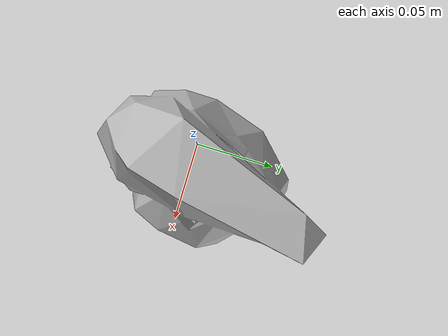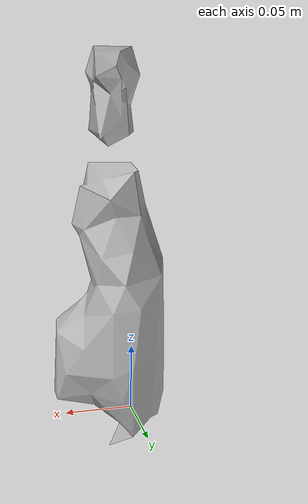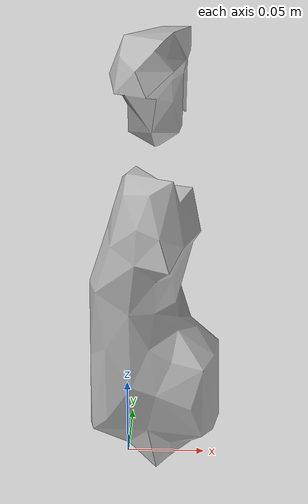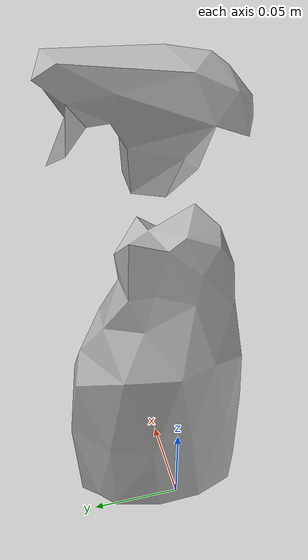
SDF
<?xml version='1.0'?>
<sdf version="1.4">
  <model name="022_windex_bottle">
    <static>false</static>
    <link name="link">
      <inertial>
        <pose>0.016981423251890258 0.01035242253508003 0.12099094818703474 -3.1386792433597477 -0.0027303667253009236 2.8543014353855245</pose>
        <mass>0.12169180854094536</mass>
        <inertia>
          <ixx>0.0006663660655596858</ixx>
          <ixy>-6.360966856414006e-20</ixy>
          <ixz>9.223835821532422e-21</ixz>
          <iyy>0.0006343488838376254</iyy>
          <iyz>2.1609846058234936e-20</iyz>
          <izz>0.00010323670802896406</izz>
        </inertia>
      </inertial>
      <collision name="collision">
        <geometry>
          <mesh>
            <!-- Use a downsampled mesh for collisions -->
            <uri>model:///022_windex_bottle/022_windex_bottle_250_collision.stl</uri>
	        </mesh>
        </geometry>
        <surface>
      </surface>
      </collision>
      <visual name="visual">
        <geometry>
          <mesh>
            <uri>model:///022_windex_bottle/textured.obj</uri>
	        </mesh>
        </geometry>
        <material>
          <script>
            <uri>model:///022_windex_bottle/022_windex_bottle.material</uri>
            <name>022_windex_bottle</name>
          </script>
        </material>
      </visual>
    </link>
  </model>
</sdf>
